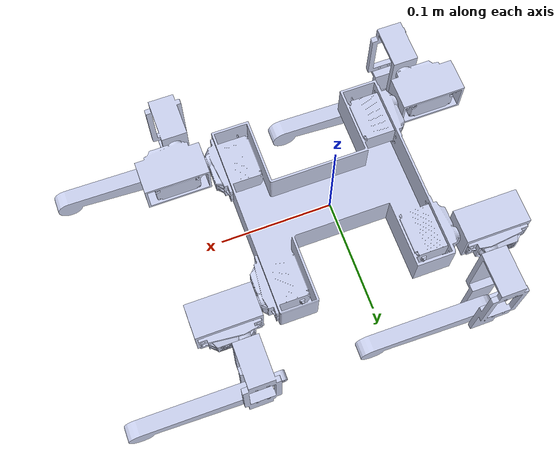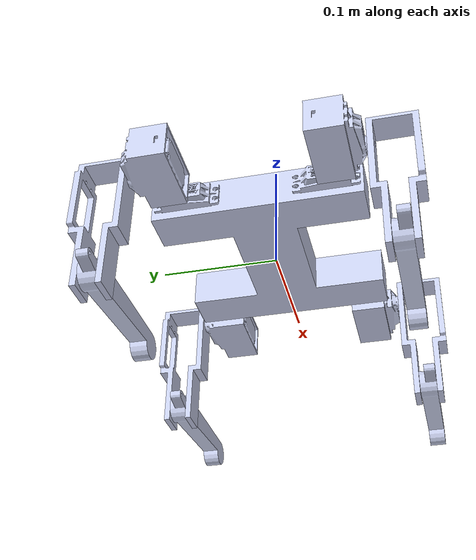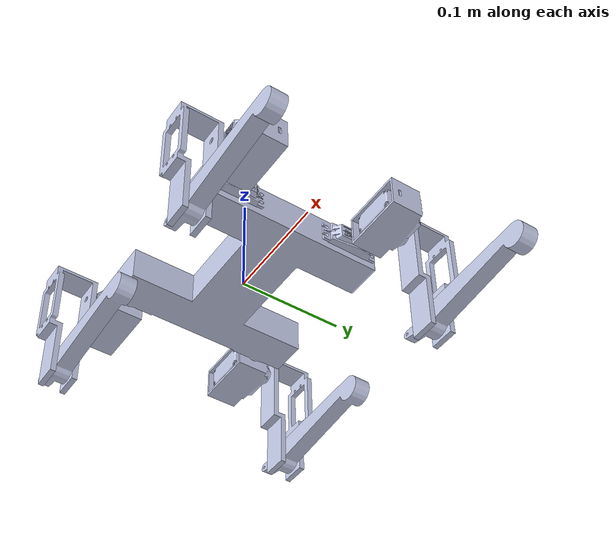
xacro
<?xml version="1.0"?>
<robot
  name="my_robot_description" xmlns:xacro = "https://www.ros.org/wiki/xacro">
  <link
    name="base_link">
    <inertial>
      <origin
        xyz="0.00096 -4.5476E-05 0.012904"
        rpy="0 0 0" />
      <mass
        value="0.20827" />
      <inertia
        ixx="0.00023674"
        ixy="5.4936E-07"
        ixz="7.7494E-08"
        iyy="0.00026889"
        iyz="5.1216E-08"
        izz="0.00047852" />
    </inertial>
    <visual>
      <origin
        xyz="0 0 0"
        rpy="0 0 0" />
      <geometry>
        <mesh
          filename="package://my_robot_description/meshes/base_link.STL" />
      </geometry>
      <material
        name="">
        <color
          rgba="0.79216 0.81961 0.93333 1" />
      </material>
    </visual>
    <collision>
      <origin
        xyz="0 0 0"
        rpy="0 0 0" />
      <geometry>
        <mesh
          filename="package://my_robot_description/meshes/base_link.STL" />
      </geometry>
    </collision>
  </link>
  <link
    name="fl_shoulder">
    <inertial>
      <origin
        xyz="0.0043625 -4.9278E-07 0.025798"
        rpy="0 0 0" />
      <mass
        value="0.046113" />
      <inertia
        ixx="1.3355E-05"
        ixy="4.4188E-10"
        ixz="1.3752E-07"
        iyy="1.5523E-05"
        iyz="-1.3639E-10"
        izz="8.5773E-06" />
    </inertial>
    <visual>
      <origin
        xyz="0 0 0"
        rpy="0 0 0" />
      <geometry>
        <mesh
          filename="package://my_robot_description/meshes/fl_shoulder.STL" />
      </geometry>
      <material
        name="">
        <color
          rgba="0.79216 0.81961 0.93333 1" />
      </material>
    </visual>
    <collision>
      <origin
        xyz="0 0 0"
        rpy="0 0 0" />
      <geometry>
        <mesh
          filename="package://my_robot_description/meshes/fl_shoulder.STL" />
      </geometry>
    </collision>
  </link>
  <joint
    name="fl_base_shoulder"
    type="revolute">
    <origin
      xyz="0.0939000000000005 0.0673968233146481 0.0155620842110593"
      rpy="1.57079632679491 0 1.57079632679489" />
    <parent
      link="base_link" />
    <child
      link="fl_shoulder" />
    <axis
      xyz="0 0 1" />
    <limit
      lower="-1.57"
      upper="1.57"
      effort="25"
      velocity="10" />
  </joint>
  <link
    name="fl_femur">
    <inertial>
      <origin
        xyz="-0.000980663369908541 -0.0447958949824971 0.0186701800364699"
        rpy="0 0 0" />
      <mass
        value="0.0298055365775702" />
      <inertia
        ixx="4.6337668316187E-05"
        ixy="6.1358526868979E-08"
        ixz="9.65672931416064E-10"
        iyy="7.42218666311901E-06"
        iyz="8.01061773944908E-07"
        izz="4.23251919783386E-05" />
    </inertial>
    <visual>
      <origin
        xyz="0 0 0"
        rpy="0 0 0" />
      <geometry>
        <mesh
          filename="package://my_robot_description/meshes/fl_femur.STL" />
      </geometry>
      <material
        name="">
        <color
          rgba="0.792156862745098 0.819607843137255 0.933333333333333 1" />
      </material>
    </visual>
    <collision>
      <origin
        xyz="0 0 0"
        rpy="0 0 0" />
      <geometry>
        <mesh
          filename="package://my_robot_description/meshes/fl_femur.STL" />
      </geometry>
    </collision>
  </link>
  <joint
    name="fl_shoulder_femur"
    type="revolute">
    <origin
      xyz="0.0279 0 0.015998"
      rpy="0 1.5708 0" />
    <parent
      link="fl_shoulder" />
    <child
      link="fl_femur" />
    <axis
      xyz="0 0 1" />
    <limit
      lower="-1.57"
      upper="1.57"
      effort="25"
      velocity="10" />
  </joint>
  <link
    name="fl_tibia">
    <inertial>
      <origin
        xyz="0.0517745630940356 0.0041435032838093 -0.00726522566947085"
        rpy="0 0 0" />
      <mass
        value="0.0350929464358555" />
      <inertia
        ixx="1.81928696189237E-06"
        ixy="-2.40811061664445E-06"
        ixz="2.59352783678858E-07"
        iyy="5.85610830193973E-05"
        iyz="7.5773139366918E-09"
        izz="5.91505405370447E-05" />
    </inertial>
    <visual>
      <origin
        xyz="0 0 0"
        rpy="0 0 0" />
      <geometry>
        <mesh
          filename="package://my_robot_description/meshes/fl_tibia.STL" />
      </geometry>
      <material
        name="">
        <color
          rgba="0.792156862745098 0.819607843137255 0.933333333333333 1" />
      </material>
    </visual>
    <collision>
      <origin
        xyz="0 0 0"
        rpy="0 0 0" />
      <geometry>
        <mesh
          filename="package://my_robot_description/meshes/fl_tibia.STL" />
      </geometry>
    </collision>
  </link>
  <joint
    name="fl_femur_tibia"
    type="revolute">
    <origin
      xyz="0 -0.0900000000000843 0.0126249999999956"
      rpy="3.14159265358979 0 3.14159265358979" />
    <parent
      link="fl_femur" />
    <child
      link="fl_tibia" />
    <axis
      xyz="0 0 1" />
    <limit
      lower="-1.57"
      upper="1.57"
      effort="25"
      velocity="10" />
  </joint>
  <link
    name="fr_shoulder">
    <inertial>
      <origin
        xyz="0.0043625 -4.9279E-07 0.025798"
        rpy="0 0 0" />
      <mass
        value="0.046113" />
      <inertia
        ixx="1.3355E-05"
        ixy="4.4189E-10"
        ixz="1.3752E-07"
        iyy="1.5523E-05"
        iyz="-1.3639E-10"
        izz="8.5773E-06" />
    </inertial>
    <visual>
      <origin
        xyz="0 0 0"
        rpy="0 0 0" />
      <geometry>
        <mesh
          filename="package://my_robot_description/meshes/fr_shoulder.STL" />
      </geometry>
      <material
        name="">
        <color
          rgba="0.79216 0.81961 0.93333 1" />
      </material>
    </visual>
    <collision>
      <origin
        xyz="0 0 0"
        rpy="0 0 0" />
      <geometry>
        <mesh
          filename="package://my_robot_description/meshes/fr_shoulder.STL" />
      </geometry>
    </collision>
  </link>
  <joint
    name="fr_base_shoulder"
    type="revolute">
    <origin
      xyz="0.0939000000000001 -0.0674021508832441 0.0155620842110643"
      rpy="-1.57079632679491 0 -1.5707963267949" />
    <parent
      link="base_link" />
    <child
      link="fr_shoulder" />
    <axis
      xyz="0 0 1" />
    <limit
      lower="-1.57"
      upper="1.57"
      effort="25"
      velocity="10" />
  </joint>
  <link
    name="fr_femur">
    <inertial>
      <origin
        xyz="0.0447958949819615 -0.000980663367950996 0.0186701800375426"
        rpy="0 0 0" />
      <mass
        value="0.0298055365775699" />
      <inertia
        ixx="7.42218666311882E-06"
        ixy="-6.13585268685657E-08"
        ixz="-8.01061773944898E-07"
        iyy="4.63376683161864E-05"
        iyz="9.65672931434008E-10"
        izz="4.23251919783382E-05" />
    </inertial>
    <visual>
      <origin
        xyz="0 0 0"
        rpy="0 0 0" />
      <geometry>
        <mesh
          filename="package://my_robot_description/meshes/fr_femur.STL" />
      </geometry>
      <material
        name="">
        <color
          rgba="0.792156862745098 0.819607843137255 0.933333333333333 1" />
      </material>
    </visual>
    <collision>
      <origin
        xyz="0 0 0"
        rpy="0 0 0" />
      <geometry>
        <mesh
          filename="package://my_robot_description/meshes/fr_femur.STL" />
      </geometry>
    </collision>
  </link>
  <joint
    name="fr_shoulder_femur"
    type="revolute">
    <origin
      xyz="0.02789999952295 0 0.0159978551142177"
      rpy="1.57079632679489 0 1.5707963267949" />
    <parent
      link="fr_shoulder" />
    <child
      link="fr_femur" />
    <axis
      xyz="0 0 1" />
    <limit
      lower="-1.57"
      upper="1.57"
      effort="25"
      velocity="10" />
  </joint>
  <link
    name="fr_tibia">
    <inertial>
      <origin
        xyz="-0.051774563094025 0.004143503284044 -0.00748477433056993"
        rpy="0 0 0" />
      <mass
        value="0.0350929464358555" />
      <inertia
        ixx="1.81928696191169E-06"
        ixy="2.40811061687171E-06"
        ixz="2.59352783682773E-07"
        iyy="5.8561083019378E-05"
        iyz="-7.57731393874348E-09"
        izz="5.91505405370448E-05" />
    </inertial>
    <visual>
      <origin
        xyz="0 0 0"
        rpy="0 0 0" />
      <geometry>
        <mesh
          filename="package://my_robot_description/meshes/fr_tibia.STL" />
      </geometry>
      <material
        name="">
        <color
          rgba="0.792156862745098 0.819607843137255 0.933333333333333 1" />
      </material>
    </visual>
    <collision>
      <origin
        xyz="0 0 0"
        rpy="0 0 0" />
      <geometry>
        <mesh
          filename="package://my_robot_description/meshes/fr_tibia.STL" />
      </geometry>
    </collision>
  </link>
  <joint
    name="fr_femur_tibia"
    type="revolute">
    <origin
      xyz="0.09 0 0.012625"
      rpy="3.1416 0 -1.5708" />
    <parent
      link="fr_femur" />
    <child
      link="fr_tibia" />
    <axis
      xyz="0 0 -1" />
    <limit
      lower="-1.57"
      upper="1.57"
      effort="25"
      velocity="10" />
  </joint>
  <link
    name="bl_shoulder">
    <inertial>
      <origin
        xyz="0.0043625 -4.9278E-07 0.0288"
        rpy="0 0 0" />
      <mass
        value="0.046113" />
      <inertia
        ixx="1.3355E-05"
        ixy="4.4188E-10"
        ixz="1.3752E-07"
        iyy="1.5523E-05"
        iyz="-1.3639E-10"
        izz="8.5773E-06" />
    </inertial>
    <visual>
      <origin
        xyz="0 0 0"
        rpy="0 0 0" />
      <geometry>
        <mesh
          filename="package://my_robot_description/meshes/bl_shoulder.STL" />
      </geometry>
      <material
        name="">
        <color
          rgba="0.79216 0.81961 0.93333 1" />
      </material>
    </visual>
    <collision>
      <origin
        xyz="0 0 0"
        rpy="0 0 0" />
      <geometry>
        <mesh
          filename="package://my_robot_description/meshes/bl_shoulder.STL" />
      </geometry>
    </collision>
  </link>
  <joint
    name="bl_base_shoulder"
    type="revolute">
    <origin
      xyz="-0.0889021447367624 0.0673366958544533 0.0154391055928195"
      rpy="-1.57079632679489 0 1.57079632679489" />
    <parent
      link="base_link" />
    <child
      link="bl_shoulder" />
    <axis
      xyz="0 0 1" />
    <limit
      lower="-1.57"
      upper="1.57"
      effort="25"
      velocity="10" />
  </joint>
  <link
    name="bl_femur">
    <inertial>
      <origin
        xyz="0.00098066 0.044796 0.01867"
        rpy="0 0 0" />
      <mass
        value="0.029806" />
      <inertia
        ixx="4.6338E-05"
        ixy="6.1359E-08"
        ixz="-9.6567E-10"
        iyy="7.4222E-06"
        iyz="-8.0106E-07"
        izz="4.2325E-05" />
    </inertial>
    <visual>
      <origin
        xyz="0 0 0"
        rpy="0 0 0" />
      <geometry>
        <mesh
          filename="package://my_robot_description/meshes/bl_femur.STL" />
      </geometry>
      <material
        name="">
        <color
          rgba="0.79216 0.81961 0.93333 1" />
      </material>
    </visual>
    <collision>
      <origin
        xyz="0 0 0"
        rpy="0 0 0" />
      <geometry>
        <mesh
          filename="package://my_robot_description/meshes/bl_femur.STL" />
      </geometry>
    </collision>
  </link>
  <joint
    name="bl_shoulder_femur"
    type="revolute">
    <origin
      xyz="0.0278999995231527 0 0.0190000008046689"
      rpy="0 1.5707963267949 0" />
    <parent
      link="bl_shoulder" />
    <child
      link="bl_femur" />
    <axis
      xyz="0 0 1" />
    <limit
      lower="-1.57"
      upper="1.57"
      effort="25"
      velocity="10" />
  </joint>
  <link
    name="bl_tibia">
    <inertial>
      <origin
        xyz="-0.051775 -0.0041435 -0.0072652"
        rpy="0 0 0" />
      <mass
        value="0.035093" />
      <inertia
        ixx="1.8193E-06"
        ixy="-2.4081E-06"
        ixz="-2.5935E-07"
        iyy="5.8561E-05"
        iyz="-7.5773E-09"
        izz="5.9151E-05" />
    </inertial>
    <visual>
      <origin
        xyz="0 0 0"
        rpy="0 0 0" />
      <geometry>
        <mesh
          filename="package://my_robot_description/meshes/bl_tibia.STL" />
      </geometry>
      <material
        name="">
        <color
          rgba="0.79216 0.81961 0.93333 1" />
      </material>
    </visual>
    <collision>
      <origin
        xyz="0 0 0"
        rpy="0 0 0" />
      <geometry>
        <mesh
          filename="package://my_robot_description/meshes/bl_tibia.STL" />
      </geometry>
    </collision>
  </link>
  <joint
    name="bl_femur_tibia"
    type="revolute">
    <origin
      xyz="0 0.0899999999999529 0.0126249999999949"
      rpy="3.14159265358979 0 3.14159265358979" />
    <parent
      link="bl_femur" />
    <child
      link="bl_tibia" />
    <axis
      xyz="0 0 1" />
    <limit
      lower="-1.57"
      upper="1.57"
      effort="25"
      velocity="10" />
  </joint>
  <link
    name="br_shoulder">
    <inertial>
      <origin
        xyz="0.0043625 -4.9278E-07 0.0288"
        rpy="0 0 0" />
      <mass
        value="0.046113" />
      <inertia
        ixx="1.3355E-05"
        ixy="4.4188E-10"
        ixz="1.3752E-07"
        iyy="1.5523E-05"
        iyz="-1.3639E-10"
        izz="8.5773E-06" />
    </inertial>
    <visual>
      <origin
        xyz="0 0 0"
        rpy="0 0 0" />
      <geometry>
        <mesh
          filename="package://my_robot_description/meshes/br_shoulder.STL" />
      </geometry>
      <material
        name="">
        <color
          rgba="0.79216 0.81961 0.93333 1" />
      </material>
    </visual>
    <collision>
      <origin
        xyz="0 0 0"
        rpy="0 0 0" />
      <geometry>
        <mesh
          filename="package://my_robot_description/meshes/br_shoulder.STL" />
      </geometry>
    </collision>
  </link>
  <joint
    name="br_base_shoulder"
    type="revolute">
    <origin
      xyz="-0.0889021447367648 -0.0673420234230704 0.0154391055928281"
      rpy="1.57079632679489 0 -1.5707963267949" />
    <parent
      link="base_link" />
    <child
      link="br_shoulder" />
    <axis
      xyz="0 0 1" />
    <limit
      lower="-1.57"
      upper="1.57"
      effort="25"
      velocity="10" />
  </joint>
  <link
    name="br_femur">
    <inertial>
      <origin
        xyz="-0.00098066 -0.044796 0.01867"
        rpy="0 0 0" />
      <mass
        value="0.029806" />
      <inertia
        ixx="4.6338E-05"
        ixy="6.1359E-08"
        ixz="9.6567E-10"
        iyy="7.4222E-06"
        iyz="8.0106E-07"
        izz="4.2325E-05" />
    </inertial>
    <visual>
      <origin
        xyz="0 0 0"
        rpy="0 0 0" />
      <geometry>
        <mesh
          filename="package://my_robot_description/meshes/br_femur.STL" />
      </geometry>
      <material
        name="">
        <color
          rgba="0.79216 0.81961 0.93333 1" />
      </material>
    </visual>
    <collision>
      <origin
        xyz="0 0 0"
        rpy="0 0 0" />
      <geometry>
        <mesh
          filename="package://my_robot_description/meshes/br_femur.STL" />
      </geometry>
    </collision>
  </link>
  <joint
    name="br_shoulder_femur"
    type="revolute">
    <origin
      xyz="0.0278999995231699 0 0.0190000008046445"
      rpy="0 1.5707963267949 0" />
    <parent
      link="br_shoulder" />
    <child
      link="br_femur" />
    <axis
      xyz="0 0 1" />
    <limit
      lower="-1.57"
      upper="1.57"
      effort="25"
      velocity="10" />
  </joint>
  <link
    name="br_tibia">
    <inertial>
      <origin
        xyz="0.051775 -0.0041435 -0.0074848"
        rpy="0 0 0" />
      <mass
        value="0.035093" />
      <inertia
        ixx="1.8193E-06"
        ixy="2.4081E-06"
        ixz="-2.5935E-07"
        iyy="5.8561E-05"
        iyz="7.5773E-09"
        izz="5.9151E-05" />
    </inertial>
    <visual>
      <origin
        xyz="0 0 0"
        rpy="0 0 0" />
      <geometry>
        <mesh
          filename="package://my_robot_description/meshes/br_tibia.STL" />
      </geometry>
      <material
        name="">
        <color
          rgba="0.79216 0.81961 0.93333 1" />
      </material>
    </visual>
    <collision>
      <origin
        xyz="0 0 0"
        rpy="0 0 0" />
      <geometry>
        <mesh
          filename="package://my_robot_description/meshes/br_tibia.STL" />
      </geometry>
    </collision>
  </link>
  <joint
    name="br_femur_tibia"
    type="revolute">
    <origin
      xyz="0 -0.09 0.012625"
      rpy="3.1416 0 0" />
    <parent
      link="br_femur" />
    <child
      link="br_tibia" />
    <axis
      xyz="0 0 1" />
    <limit
      lower="-1.57"
      upper="1.57"
      effort="25"
      velocity="10" />
  </joint>
</robot>
